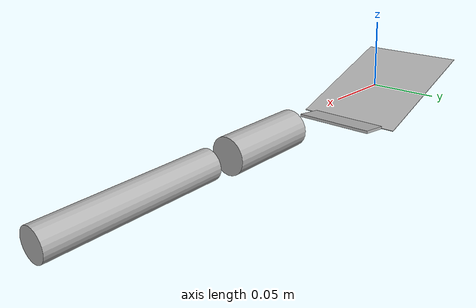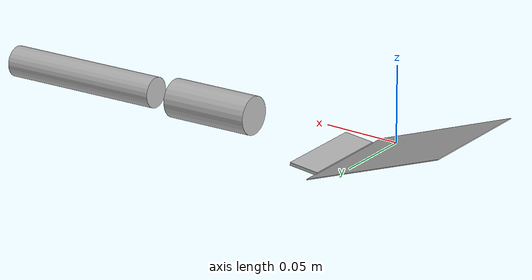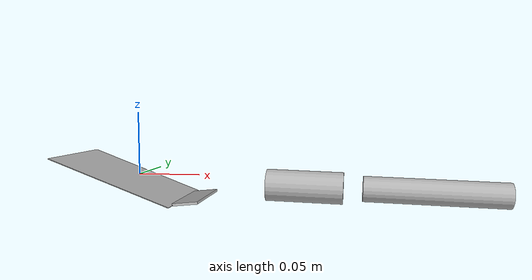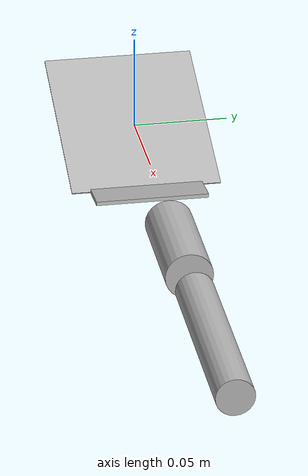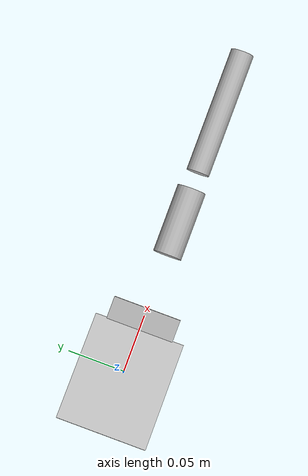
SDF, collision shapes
<?xml version="1.0" ?>
<!-- |    This document was autogenerated by xacro from bazel-out/k8-opt/bin/models/lifelong/spatula/tmphydchzcb/spatula_oxo_nylon_square_issue7322_low.sdf.xacro | -->
<!-- |    EDITING THIS FILE BY HAND IS NOT RECOMMENDED                                 | -->
<sdf version="1.6" xmlns:drake="drake.mit.edu">
  <model name="spatula_oxo_nylon_square_issue7322_low">
    <link name="spatula_oxo_nylon_square_issue7322_low">
      <pose>0 0 0 0 0 0</pose>
      <inertial>
        <pose>0.155 1.6e-06 -0.0097 0 0 0</pose>
        <mass>0.0796</mass>
        <inertia>
          <ixx> 0.000013</ixx>
          <ixy> 0.000000</ixy>
          <ixz> 0.000019</ixz>
          <iyy> 0.000754</iyy>
          <iyz> 0.000000</iyz>
          <izz> 0.000759</izz>
        </inertia>
      </inertial>
      <visual name="spatula_oxo_nylon_square_issue7322_low">
        <pose>0 0 0 0 0 0</pose>
        <geometry>
          <mesh>
            <uri>package://drake/examples/panda/data/models/spatula_long/spatula_oxo_nylon_square_issue7322_low.obj</uri>
            <scale>1.0 1.0 1.0</scale>
          </mesh>
        </geometry>
        <material>
          <drake:diffuse_map>package://drake/examples/panda/data/models/spatula_long/spatula_oxo_nylon_square_issue7322_color.png</drake:diffuse_map>
        </material>
      </visual>
      <collision name="spatula_bottom_collision">
        <pose>-0.009 0 -0.0018 0 0.36 0</pose>
        <geometry>
          <box>
            <size>0.1 0.08 0.0005</size>
          </box>
        </geometry>
        <drake:proximity_properties>
          <drake:mu_dynamic>0.15</drake:mu_dynamic>
          <drake:mu_static>0.15</drake:mu_static>
          <drake:rigid_hydroelastic/>
          <drake:relaxation_time>0.1</drake:relaxation_time>
        </drake:proximity_properties>
      </collision>
      <collision name="spatula_neck_collision_compliant">
        <pose>0.047 0 -0.018 0 -0.1 0</pose>
        <geometry>
          <box>
            <size>0.02 0.06 0.002</size>
          </box>
        </geometry>
        <drake:proximity_properties>
          <drake:mu_dynamic>0.15</drake:mu_dynamic>
          <drake:mu_static>0.15</drake:mu_static>
          <drake:rigid_hydroelastic/>
          <drake:relaxation_time>0.1</drake:relaxation_time>
        </drake:proximity_properties>
      </collision>
      <collision name="spatula_handle_collision_top">
        <pose>0.235 0 -0.01 0 1.6 0</pose>
        <geometry>
          <cylinder>
            <radius>0.01</radius>
            <length>0.11</length>
          </cylinder>
        </geometry>
        <drake:proximity_properties>
          <drake:mu_dynamic>0.15</drake:mu_dynamic>
          <drake:mu_static>0.15</drake:mu_static>
          <drake:rigid_hydroelastic/>
          <drake:mesh_resolution_hint>0.005</drake:mesh_resolution_hint>
          <drake:relaxation_time>0.1</drake:relaxation_time>
        </drake:proximity_properties>
      </collision>
      <visual name="spatula_block_visual">
        <pose>0.125 0 -0.0075 0 1.6 0</pose>
        <geometry>
          <box>
            <size>0.025 0.04 0.06</size>
          </box>
        </geometry>
        <material>
          <ambient>0.1 0.1 0.1 1</ambient>
          <diffuse>0.1 0.1 0.1 1</diffuse>
          <specular>0 0 0 0</specular>
          <emissive>0 0 0 1</emissive>
        </material>
      </visual>
      <collision name="spatula_block_collision">
        <pose>0.135 0 -0.0075 0 1.6 0</pose>
        <geometry>
          <cylinder>
            <radius>0.0125</radius>
            <length>0.06</length>
          </cylinder>
        </geometry>
        <drake:proximity_properties>
          <drake:compliant_hydroelastic/>
          <drake:mu_dynamic>1.0</drake:mu_dynamic>
          <drake:mu_static>1.0</drake:mu_static>
          <drake:mesh_resolution_hint>0.005</drake:mesh_resolution_hint>
          <drake:hydroelastic_modulus>1e7</drake:hydroelastic_modulus>
          <drake:hunt_crossley_dissipation>1.0</drake:hunt_crossley_dissipation>
          <drake:relaxation_time>0.1</drake:relaxation_time>
        </drake:proximity_properties>
      </collision>
    </link>
    <frame name="spatula_grasp_frame">
      <pose relative_to="spatula_tip_frame">-0.177 0 0.043 0 0 0</pose>   <!-- at block, upright-->
    </frame>
    <frame name="spatula_blade_origin_frame">
      <pose relative_to="spatula_oxo_nylon_square_issue7322_low">0 0 -0.003 0 0.36 0</pose>
    </frame>
    <frame name="spatula_tip_frame">
      <pose relative_to="spatula_blade_origin_frame">-0.059 0 -0.00225 0 0 3.1416</pose>  <!-- make x forward, bottom of plate (half of height is 0.00025)-->
    </frame>
    <frame name="origin">
      <pose relative_to="spatula_oxo_nylon_square_issue7322_low">0 0 0 0 0 0</pose>
    </frame>
    <frame name="bottom">
      <pose relative_to="spatula_oxo_nylon_square_issue7322_low">0 0 -0.023149 0 0 0</pose>
    </frame>
  </model>
</sdf>
